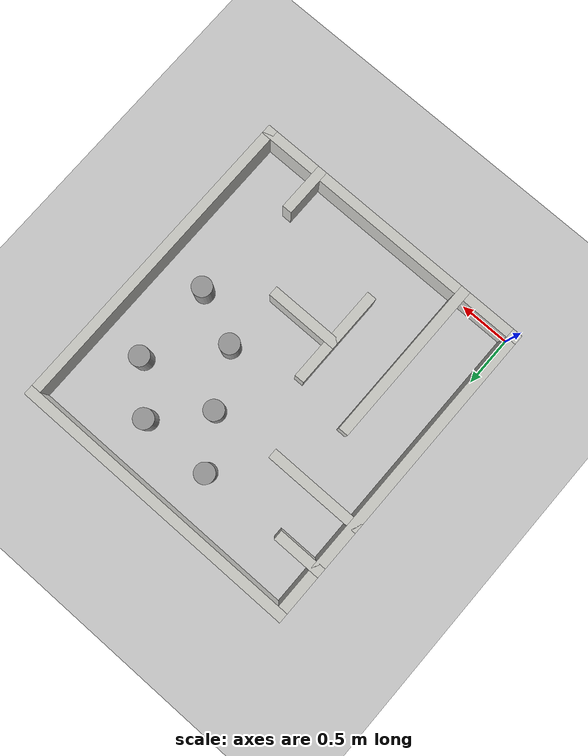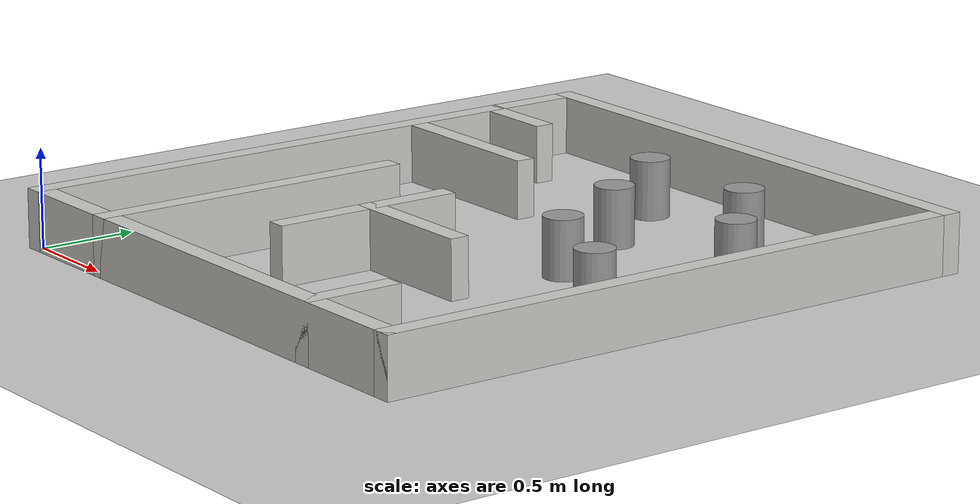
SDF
<sdf version="1.6">
 <world name="default">
  <light name="sun" type="directional">
   <pose>0 0 10 0 -0 0</pose>
   <diffuse>0.8 0.8 0.8 1</diffuse>
   <specular>0.2 0.2 0.2 1</specular>
   <attenuation>
    <range>1000</range>
    <constant>0.9</constant>
    <linear>0.01</linear>
    <quadratic>0.001</quadratic>
   </attenuation>
   <direction>-0.5 0.1 -0.9</direction>
  </light>
  <model name="ground_plane">
   <static>1</static>
   <link name="link">
    <collision name="collision">
     <geometry><plane><normal>0 0 1</normal><size>100 100</size></plane></geometry>
     <surface>
      <contact><collide_bitmask>65535</collide_bitmask></contact>
      <friction><ode><mu>100</mu><mu2>50</mu2></ode></friction>
     </surface>
    </collision>
    <visual name="visual">
     <cast_shadows>0</cast_shadows>
     <geometry><plane><normal>0 0 1</normal><size>100 100</size></plane></geometry>
     <material>
      <script><uri>file://media/materials/scripts/gazebo.material</uri><name>Gazebo/Grey</name></script>
     </material>
    </visual>
   </link>
  </model>
  <gravity>0 0 -9.8</gravity>
  <magnetic_field>6e-06 2.3e-05 -4.2e-05</magnetic_field>
  <atmosphere type="adiabatic"/>
  <physics name="default_physics" default="0" type="ode">
   <max_step_size>0.001</max_step_size>
   <real_time_factor>1</real_time_factor>
   <real_time_update_rate>1000</real_time_update_rate>
  </physics>
  <scene><ambient>0.4 0.4 0.4 1</ambient><background>0.7 0.7 0.7 1</background><shadows>1</shadows></scene>
  <audio><device>default</device></audio>
  <spherical_coordinates>
   <surface_model>EARTH_WGS84</surface_model>
   <latitude_deg>0</latitude_deg>
   <longitude_deg>0</longitude_deg>
   <elevation>0</elevation>
   <heading_deg>0</heading_deg>
  </spherical_coordinates>
  <model name="qmp_world">
   <pose>1.45 1.6 0 0 -0 0</pose>
   <link name="Wall_12">
    <collision name="Wall_12_Collision">
     <geometry><box><size>3 0.1 0.3</size></box></geometry>
     <pose>0 0 0.15 0 -0 0</pose>
    </collision>
    <visual name="Wall_12_Visual">
     <pose>0 0 0.15 0 -0 0</pose>
     <geometry><box><size>3 0.1 0.3</size></box></geometry>
     <material>
      <script><uri>file://media/materials/scripts/gazebo.material</uri><name>Gazebo/CeilingTiled</name></script>
      <ambient>0.435294 0.796078 0.67451 1</ambient>
     </material>
     <meta><layer>0</layer></meta>
    </visual>
    <pose>0 1.6 0 0 -0 0</pose>
   </link>
   <link name="Wall_16">
    <collision name="Wall_16_Collision">
     <geometry><box><size>3.2 0.1 0.3</size></box></geometry>
     <pose>0 0 0.15 0 -0 0</pose>
    </collision>
    <visual name="Wall_16_Visual">
     <pose>0 0 0.15 0 -0 0</pose>
     <geometry><box><size>3.2 0.1 0.3</size></box></geometry>
     <material>
      <script><uri>file://media/materials/scripts/gazebo.material</uri><name>Gazebo/CeilingTiled</name></script>
      <ambient>0.435294 0.796078 0.67451 1</ambient>
     </material>
     <meta><layer>0</layer></meta>
    </visual>
    <pose>-1.45 -0.05 0 0 -0 1.5708</pose>
   </link>
   <link name="Wall_18">
    <collision name="Wall_18_Collision">
     <geometry><box><size>3.2 0.1 0.3</size></box></geometry>
     <pose>0 0 0.15 0 -0 0</pose>
    </collision>
    <visual name="Wall_18_Visual">
     <pose>0 0 0.15 0 -0 0</pose>
     <geometry><box><size>3.2 0.1 0.3</size></box></geometry>
     <material>
      <script><uri>file://media/materials/scripts/gazebo.material</uri><name>Gazebo/CeilingTiled</name></script>
      <ambient>0.435294 0.796078 0.67451 1</ambient>
     </material>
     <meta><layer>0</layer></meta>
    </visual>
    <pose>1.45 -0.05 0 0 -0 1.5708</pose>
   </link>
   <link name="Wall_21">
    <collision name="Wall_21_Collision">
     <geometry><box><size>1.7 0.1 0.3</size></box></geometry>
     <pose>0 0 0.15 0 -0 0</pose>
    </collision>
    <visual name="Wall_21_Visual">
     <pose>0 0 0.15 0 -0 0</pose>
     <geometry><box><size>1.7 0.1 0.3</size></box></geometry>
     <material>
      <script><uri>file://media/materials/scripts/gazebo.material</uri><name>Gazebo/CeilingTiled</name></script>
      <ambient>0.760784 0.662745 0.627451 1</ambient>
     </material>
     <meta><layer>0</layer></meta>
    </visual>
    <pose>-0.85 -0.8 0 0 -0 1.5708</pose>
   </link>
   <link name="Wall_23">
    <collision name="Wall_23_Collision">
     <geometry><box><size>1 0.1 0.3</size></box></geometry>
     <pose>0 0 0.15 0 -0 0</pose>
    </collision>
    <visual name="Wall_23_Visual">
     <pose>0 0 0.15 0 -0 0</pose>
     <geometry><box><size>1 0.1 0.3</size></box></geometry>
     <material>
      <script><uri>file://media/materials/scripts/gazebo.material</uri><name>Gazebo/CeilingTiled</name></script>
      <ambient>0.760784 0.662745 0.627451 1</ambient>
     </material>
     <meta><layer>0</layer></meta>
    </visual>
    <pose>-1 0.6 0 0 -0 0</pose>
   </link>
   <link name="Wall_25">
    <collision name="Wall_25_Collision">
     <geometry><box><size>1 0.1 0.3</size></box></geometry>
     <pose>0 0 0.15 0 -0 0</pose>
    </collision>
    <visual name="Wall_25_Visual">
     <pose>0 0 0.15 0 -0 0</pose>
     <geometry><box><size>1 0.1 0.3</size></box></geometry>
     <material>
      <script><uri>file://media/materials/scripts/gazebo.material</uri><name>Gazebo/CeilingTiled</name></script>
      <ambient>0.760784 0.662745 0.627451 1</ambient>
     </material>
     <meta><layer>0</layer></meta>
    </visual>
    <pose>-0.25 -0.55 0 0 -0 1.5708</pose>
   </link>
   <link name="Wall_27">
    <collision name="Wall_27_Collision">
     <geometry><box><size>0.75 0.1 0.3</size></box></geometry>
     <pose>0 0 0.15 0 -0 0</pose>
    </collision>
    <visual name="Wall_27_Visual">
     <pose>0 0 0.15 0 -0 0</pose>
     <geometry><box><size>0.75 0.1 0.3</size></box></geometry>
     <material>
      <script><uri>file://media/materials/scripts/gazebo.material</uri><name>Gazebo/CeilingTiled</name></script>
      <ambient>0.760784 0.662745 0.627451 1</ambient>
     </material>
     <meta><layer>0</layer></meta>
    </visual>
    <pose>0.075 -0.5 0 0 -0 0</pose>
   </link>
   <link name="Wall_29">
    <collision name="Wall_29_Collision">
     <geometry><box><size>0.5 0.1 0.3</size></box></geometry>
     <pose>0 0 0.15 0 -0 0</pose>
    </collision>
    <visual name="Wall_29_Visual">
     <pose>0 0 0.15 0 -0 0</pose>
     <geometry><box><size>0.5 0.1 0.3</size></box></geometry>
     <material>
      <script><uri>file://media/materials/scripts/gazebo.material</uri><name>Gazebo/CeilingTiled</name></script>
      <ambient>0.760784 0.662745 0.627451 1</ambient>
     </material>
     <meta><layer>0</layer></meta>
    </visual>
    <pose>-1.25 1.1 0 0 -0 3.14159</pose>
   </link>
   <link name="Wall_31">
    <collision name="Wall_31_Collision">
     <geometry><box><size>0.5 0.1 0.3</size></box></geometry>
     <pose>0 0 0.15 0 -0 0</pose>
    </collision>
    <visual name="Wall_31_Visual">
     <pose>0 0 0.15 0 -0 0</pose>
     <geometry><box><size>0.5 0.1 0.3</size></box></geometry>
     <material>
      <script><uri>file://media/materials/scripts/gazebo.material</uri><name>Gazebo/CeilingTiled</name></script>
      <ambient>0.760784 0.662745 0.627451 1</ambient>
     </material>
     <meta><layer>0</layer></meta>
    </visual>
    <pose>0.85 -1.4 0 0 -0 1.5708</pose>
   </link>
   <link name="Wall_9">
    <collision name="Wall_9_Collision">
     <geometry><box><size>3 0.1 0.3</size></box></geometry>
     <pose>0 0 0.15 0 -0 0</pose>
    </collision>
    <visual name="Wall_9_Visual">
     <pose>0 0 0.15 0 -0 0</pose>
     <geometry><box><size>3 0.1 0.3</size></box></geometry>
     <material>
      <script><uri>file://media/materials/scripts/gazebo.material</uri><name>Gazebo/CeilingTiled</name></script>
      <ambient>0.435294 0.796078 0.67451 1</ambient>
     </material>
     <meta><layer>0</layer></meta>
    </visual>
    <pose>0 -1.6 0 0 -0 0</pose>
   </link>
   <static>1</static>
  </model>
  <model name="qmp_world2">
   <link name="link_0_clone">
    <inertial>
     <mass>1</mass>
     <inertia><ixx>0.145833</ixx><ixy>0</ixy><ixz>0</ixz><iyy>0.145833</iyy><iyz>0</iyz><izz>0.125</izz></inertia>
    </inertial>
    <pose>-0.646084 0.515914 0 0 -0 0</pose>
    <visual name="visual">
     <geometry><cylinder><radius>0.1</radius><length>0.3</length></cylinder></geometry>
     <material>
      <lighting>1</lighting>
      <script><uri>file://media/materials/scripts/gazebo.material</uri><name>Gazebo/Grey</name></script>
      <shader type="vertex"><normal_map>__default__</normal_map></shader>
      <ambient>0.3 0.3 0.3 1</ambient>
      <diffuse>0.7 0.7 0.7 1</diffuse>
      <specular>0.01 0.01 0.01 1</specular>
      <emissive>0 0 0 1</emissive>
     </material>
    </visual>
    <collision name="collision">
     <geometry><cylinder><radius>0.1</radius><length>0.3</length></cylinder></geometry>
     <surface>
      <friction>
       <ode><mu>1</mu><mu2>1</mu2><fdir1>0 0 0</fdir1><slip1>0</slip1><slip2>0</slip2></ode>
       <torsional>
        <coefficient>1</coefficient>
        <patch_radius>0</patch_radius>
        <surface_radius>0</surface_radius>
        <use_patch_radius>1</use_patch_radius>
        <ode><slip>0</slip></ode>
       </torsional>
      </friction>
      <bounce><restitution_coefficient>0</restitution_coefficient><threshold>1e+06</threshold></bounce>
      <contact>
       <collide_without_contact>0</collide_without_contact>
       <collide_without_contact_bitmask>1</collide_without_contact_bitmask>
       <collide_bitmask>1</collide_bitmask>
       <ode>
        <soft_cfm>0</soft_cfm>
        <soft_erp>0.2</soft_erp>
        <kp>1e+13</kp>
        <kd>1</kd>
        <max_vel>0.01</max_vel>
        <min_depth>0</min_depth>
       </ode>
       <bullet>
        <split_impulse>1</split_impulse>
        <split_impulse_penetration_threshold>-0.01</split_impulse_penetration_threshold>
        <soft_cfm>0</soft_cfm>
        <soft_erp>0.2</soft_erp>
        <kp>1e+13</kp>
        <kd>1</kd>
       </bullet>
      </contact>
     </surface>
    </collision>
   </link>
   <link name="link_0_clone_1">
    <inertial>
     <mass>1</mass>
     <inertia><ixx>0.145833</ixx><ixy>0</ixy><ixz>0</ixz><iyy>0.145833</iyy><iyz>0</iyz><izz>0.125</izz></inertia>
    </inertial>
    <pose>0.478273 -0.712838 0 0 -0 0</pose>
    <visual name="visual">
     <geometry><cylinder><radius>0.1</radius><length>0.3</length></cylinder></geometry>
     <material>
      <lighting>1</lighting>
      <script><uri>file://media/materials/scripts/gazebo.material</uri><name>Gazebo/Grey</name></script>
      <shader type="vertex"><normal_map>__default__</normal_map></shader>
      <ambient>0.3 0.3 0.3 1</ambient>
      <diffuse>0.7 0.7 0.7 1</diffuse>
      <specular>0.01 0.01 0.01 1</specular>
      <emissive>0 0 0 1</emissive>
     </material>
    </visual>
    <collision name="collision">
     <geometry><cylinder><radius>0.1</radius><length>0.3</length></cylinder></geometry>
     <surface>
      <friction>
       <ode><mu>1</mu><mu2>1</mu2><fdir1>0 0 0</fdir1><slip1>0</slip1><slip2>0</slip2></ode>
       <torsional>
        <coefficient>1</coefficient>
        <patch_radius>0</patch_radius>
        <surface_radius>0</surface_radius>
        <use_patch_radius>1</use_patch_radius>
        <ode><slip>0</slip></ode>
       </torsional>
      </friction>
      <bounce><restitution_coefficient>0</restitution_coefficient><threshold>1e+06</threshold></bounce>
      <contact>
       <collide_without_contact>0</collide_without_contact>
       <collide_without_contact_bitmask>1</collide_without_contact_bitmask>
       <collide_bitmask>1</collide_bitmask>
       <ode>
        <soft_cfm>0</soft_cfm>
        <soft_erp>0.2</soft_erp>
        <kp>1e+13</kp>
        <kd>1</kd>
        <max_vel>0.01</max_vel>
        <min_depth>0</min_depth>
       </ode>
       <bullet>
        <split_impulse>1</split_impulse>
        <split_impulse_penetration_threshold>-0.01</split_impulse_penetration_threshold>
        <soft_cfm>0</soft_cfm>
        <soft_erp>0.2</soft_erp>
        <kp>1e+13</kp>
        <kd>1</kd>
       </bullet>
      </contact>
     </surface>
    </collision>
   </link>
   <link name="link_0_clone_clone">
    <inertial>
     <mass>1</mass>
     <inertia><ixx>0.145833</ixx><ixy>0</ixy><ixz>0</ixz><iyy>0.145833</iyy><iyz>0</iyz><izz>0.125</izz></inertia>
    </inertial>
    <pose>-0.340745 0.048214 0 0 -0 0</pose>
    <visual name="visual">
     <geometry><cylinder><radius>0.1</radius><length>0.3</length></cylinder></geometry>
     <material>
      <lighting>1</lighting>
      <script><uri>file://media/materials/scripts/gazebo.material</uri><name>Gazebo/Grey</name></script>
      <shader type="vertex"><normal_map>__default__</normal_map></shader>
      <ambient>0.3 0.3 0.3 1</ambient>
      <diffuse>0.7 0.7 0.7 1</diffuse>
      <specular>0.01 0.01 0.01 1</specular>
      <emissive>0 0 0 1</emissive>
     </material>
    </visual>
    <collision name="collision">
     <geometry><cylinder><radius>0.1</radius><length>0.3</length></cylinder></geometry>
     <surface>
      <friction>
       <ode><mu>1</mu><mu2>1</mu2><fdir1>0 0 0</fdir1><slip1>0</slip1><slip2>0</slip2></ode>
       <torsional>
        <coefficient>1</coefficient>
        <patch_radius>0</patch_radius>
        <surface_radius>0</surface_radius>
        <use_patch_radius>1</use_patch_radius>
        <ode><slip>0</slip></ode>
       </torsional>
      </friction>
      <bounce><restitution_coefficient>0</restitution_coefficient><threshold>1e+06</threshold></bounce>
      <contact>
       <collide_without_contact>0</collide_without_contact>
       <collide_without_contact_bitmask>1</collide_without_contact_bitmask>
       <collide_bitmask>1</collide_bitmask>
       <ode>
        <soft_cfm>0</soft_cfm>
        <soft_erp>0.2</soft_erp>
        <kp>1e+13</kp>
        <kd>1</kd>
        <max_vel>0.01</max_vel>
        <min_depth>0</min_depth>
       </ode>
       <bullet>
        <split_impulse>1</split_impulse>
        <split_impulse_penetration_threshold>-0.01</split_impulse_penetration_threshold>
        <soft_cfm>0</soft_cfm>
        <soft_erp>0.2</soft_erp>
        <kp>1e+13</kp>
        <kd>1</kd>
       </bullet>
      </contact>
     </surface>
    </collision>
   </link>
   <link name="link_0_clone_clone_0">
    <inertial>
     <mass>1</mass>
     <inertia><ixx>0.145833</ixx><ixy>0</ixy><ixz>0</ixz><iyy>0.145833</iyy><iyz>0</iyz><izz>0.125</izz></inertia>
    </inertial>
    <pose>-0.051785 -0.486428 0 0 -0 0</pose>
    <visual name="visual">
     <geometry><cylinder><radius>0.1</radius><length>0.3</length></cylinder></geometry>
     <material>
      <lighting>1</lighting>
      <script><uri>file://media/materials/scripts/gazebo.material</uri><name>Gazebo/Grey</name></script>
      <shader type="vertex"><normal_map>__default__</normal_map></shader>
      <ambient>0.3 0.3 0.3 1</ambient>
      <diffuse>0.7 0.7 0.7 1</diffuse>
      <specular>0.01 0.01 0.01 1</specular>
      <emissive>0 0 0 1</emissive>
     </material>
    </visual>
    <collision name="collision">
     <geometry><cylinder><radius>0.1</radius><length>0.3</length></cylinder></geometry>
     <surface>
      <friction>
       <ode><mu>1</mu><mu2>1</mu2><fdir1>0 0 0</fdir1><slip1>0</slip1><slip2>0</slip2></ode>
       <torsional>
        <coefficient>1</coefficient>
        <patch_radius>0</patch_radius>
        <surface_radius>0</surface_radius>
        <use_patch_radius>1</use_patch_radius>
        <ode><slip>0</slip></ode>
       </torsional>
      </friction>
      <bounce><restitution_coefficient>0</restitution_coefficient><threshold>1e+06</threshold></bounce>
      <contact>
       <collide_without_contact>0</collide_without_contact>
       <collide_without_contact_bitmask>1</collide_without_contact_bitmask>
       <collide_bitmask>1</collide_bitmask>
       <ode>
        <soft_cfm>0</soft_cfm>
        <soft_erp>0.2</soft_erp>
        <kp>1e+13</kp>
        <kd>1</kd>
        <max_vel>0.01</max_vel>
        <min_depth>0</min_depth>
       </ode>
       <bullet>
        <split_impulse>1</split_impulse>
        <split_impulse_penetration_threshold>-0.01</split_impulse_penetration_threshold>
        <soft_cfm>0</soft_cfm>
        <soft_erp>0.2</soft_erp>
        <kp>1e+13</kp>
        <kd>1</kd>
       </bullet>
      </contact>
     </surface>
    </collision>
   </link>
   <link name="link_0_clone_clone_1">
    <inertial>
     <mass>1</mass>
     <inertia><ixx>0.145833</ixx><ixy>0</ixy><ixz>0</ixz><iyy>0.145833</iyy><iyz>0</iyz><izz>0.125</izz></inertia>
    </inertial>
    <pose>0.078358 0.512462 0 0 -0 0</pose>
    <visual name="visual">
     <geometry><cylinder><radius>0.1</radius><length>0.3</length></cylinder></geometry>
     <material>
      <lighting>1</lighting>
      <script><uri>file://media/materials/scripts/gazebo.material</uri><name>Gazebo/Grey</name></script>
      <shader type="vertex"><normal_map>__default__</normal_map></shader>
      <ambient>0.3 0.3 0.3 1</ambient>
      <diffuse>0.7 0.7 0.7 1</diffuse>
      <specular>0.01 0.01 0.01 1</specular>
      <emissive>0 0 0 1</emissive>
     </material>
    </visual>
    <collision name="collision">
     <geometry><cylinder><radius>0.1</radius><length>0.3</length></cylinder></geometry>
     <surface>
      <friction>
       <ode><mu>1</mu><mu2>1</mu2><fdir1>0 0 0</fdir1><slip1>0</slip1><slip2>0</slip2></ode>
       <torsional>
        <coefficient>1</coefficient>
        <patch_radius>0</patch_radius>
        <surface_radius>0</surface_radius>
        <use_patch_radius>1</use_patch_radius>
        <ode><slip>0</slip></ode>
       </torsional>
      </friction>
      <bounce><restitution_coefficient>0</restitution_coefficient><threshold>1e+06</threshold></bounce>
      <contact>
       <collide_without_contact>0</collide_without_contact>
       <collide_without_contact_bitmask>1</collide_without_contact_bitmask>
       <collide_bitmask>1</collide_bitmask>
       <ode>
        <soft_cfm>0</soft_cfm>
        <soft_erp>0.2</soft_erp>
        <kp>1e+13</kp>
        <kd>1</kd>
        <max_vel>0.01</max_vel>
        <min_depth>0</min_depth>
       </ode>
       <bullet>
        <split_impulse>1</split_impulse>
        <split_impulse_penetration_threshold>-0.01</split_impulse_penetration_threshold>
        <soft_cfm>0</soft_cfm>
        <soft_erp>0.2</soft_erp>
        <kp>1e+13</kp>
        <kd>1</kd>
       </bullet>
      </contact>
     </surface>
    </collision>
   </link>
   <link name="link_0_clone_clone_2">
    <inertial>
     <mass>1</mass>
     <inertia><ixx>0.145833</ixx><ixy>0</ixy><ixz>0</ixz><iyy>0.145833</iyy><iyz>0</iyz><izz>0.125</izz></inertia>
    </inertial>
    <pose>0.481985 0.122651 0 0 -0 0</pose>
    <visual name="visual">
     <geometry><cylinder><radius>0.1</radius><length>0.3</length></cylinder></geometry>
     <material>
      <lighting>1</lighting>
      <script><uri>file://media/materials/scripts/gazebo.material</uri><name>Gazebo/Grey</name></script>
      <shader type="vertex"><normal_map>__default__</normal_map></shader>
      <ambient>0.3 0.3 0.3 1</ambient>
      <diffuse>0.7 0.7 0.7 1</diffuse>
      <specular>0.01 0.01 0.01 1</specular>
      <emissive>0 0 0 1</emissive>
     </material>
    </visual>
    <collision name="collision">
     <geometry><cylinder><radius>0.1</radius><length>0.3</length></cylinder></geometry>
     <surface>
      <friction>
       <ode><mu>1</mu><mu2>1</mu2><fdir1>0 0 0</fdir1><slip1>0</slip1><slip2>0</slip2></ode>
       <torsional>
        <coefficient>1</coefficient>
        <patch_radius>0</patch_radius>
        <surface_radius>0</surface_radius>
        <use_patch_radius>1</use_patch_radius>
        <ode><slip>0</slip></ode>
       </torsional>
      </friction>
      <bounce><restitution_coefficient>0</restitution_coefficient><threshold>1e+06</threshold></bounce>
      <contact>
       <collide_without_contact>0</collide_without_contact>
       <collide_without_contact_bitmask>1</collide_without_contact_bitmask>
       <collide_bitmask>1</collide_bitmask>
       <ode>
        <soft_cfm>0</soft_cfm>
        <soft_erp>0.2</soft_erp>
        <kp>1e+13</kp>
        <kd>1</kd>
        <max_vel>0.01</max_vel>
        <min_depth>0</min_depth>
       </ode>
       <bullet>
        <split_impulse>1</split_impulse>
        <split_impulse_penetration_threshold>-0.01</split_impulse_penetration_threshold>
        <soft_cfm>0</soft_cfm>
        <soft_erp>0.2</soft_erp>
        <kp>1e+13</kp>
        <kd>1</kd>
       </bullet>
      </contact>
     </surface>
    </collision>
   </link>
   <static>0</static>
   <pose>1.928 2.20672 0.15 0 -0 0</pose>
  </model>
 </world>
</sdf>
